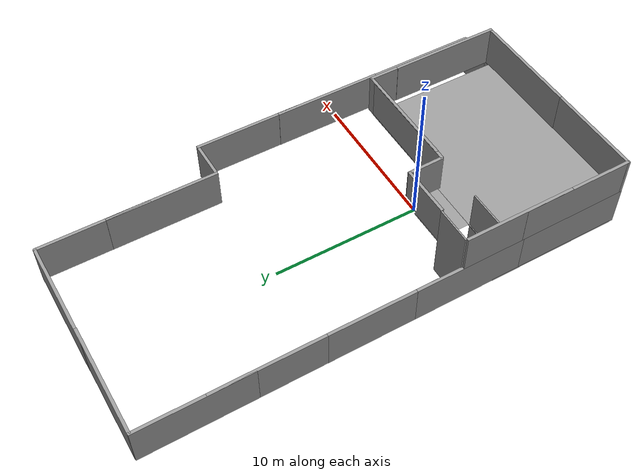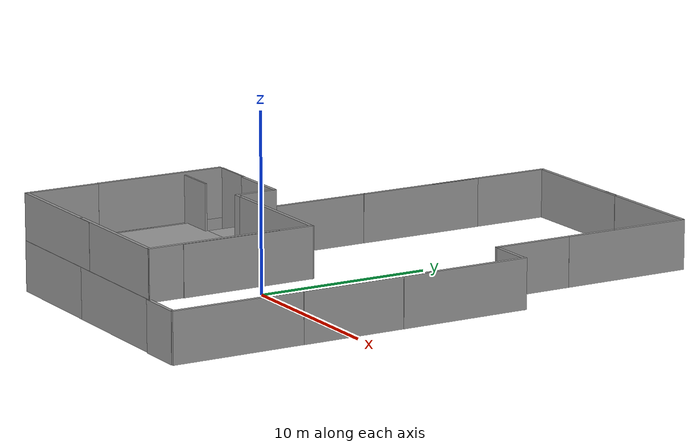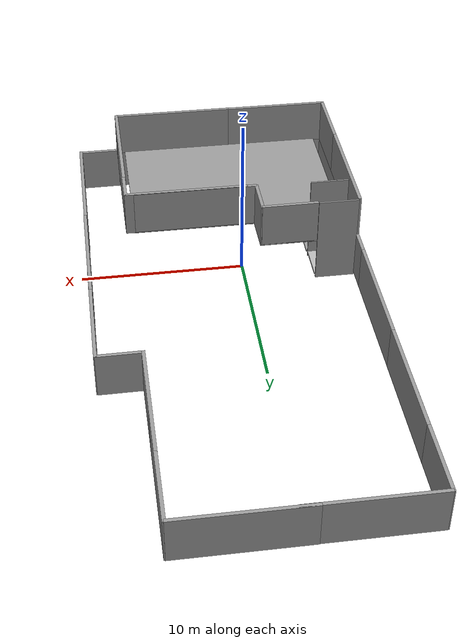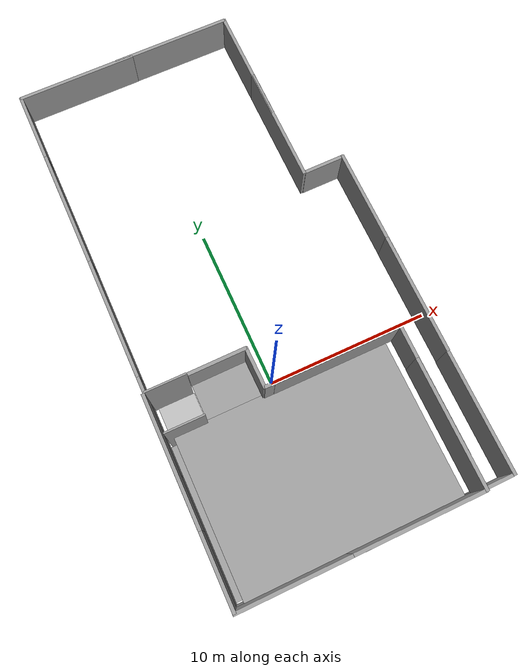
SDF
<sdf version="1.7">
 <world name="default">
  <gravity>0 0 -9.8</gravity>
  <physics name="default_physics" default="0" type="ode">
   <max_step_size>0.001</max_step_size>
   <real_time_factor>1</real_time_factor>
   <real_time_update_rate>1000</real_time_update_rate>
  </physics>
  <light name="Warehouse_CeilingLight_003" type="point">
   <pose>0 0 9 0 -0 0</pose>
   <diffuse>0.5 0.5 0.5 1</diffuse>
   <specular>0.2 0.2 0.2 1</specular>
   <attenuation>
    <range>80</range>
    <constant>0.3</constant>
    <linear>0.01</linear>
    <quadratic>0.001</quadratic>
   </attenuation>
   <direction>0.1 0.1 -1</direction>
   <spot><inner_angle>0</inner_angle><outer_angle>0</outer_angle><falloff>0</falloff></spot>
  </light>
  <magnetic_field>6e-06 2.3e-05 -4.2e-05</magnetic_field>
  <atmosphere type="adiabatic"/>
  <scene><ambient>0.4 0.4 0.4 1</ambient><background>0.7 0.7 0.7 1</background><shadows>1</shadows></scene>
  <audio><device>default</device></audio>
  <spherical_coordinates>
   <surface_model>EARTH_WGS84</surface_model>
   <latitude_deg>0</latitude_deg>
   <longitude_deg>0</longitude_deg>
   <elevation>0</elevation>
   <heading_deg>0</heading_deg>
  </spherical_coordinates>
  <model name="grey_wall">
   <static>1</static>
   <link name="link">
    <pose>0 0 1.4 0 -0 0</pose>
    <collision name="collision"><geometry><box><size>7.5 0.2 2.8</size></box></geometry></collision>
    <visual name="visual">
     <cast_shadows>0</cast_shadows>
     <geometry><box><size>7.5 0.2 2.8</size></box></geometry>
     <material>
      <script>
       <uri>model://grey_wall/materials/scripts</uri>
       <uri>model://grey_wall/materials/textures</uri>
       <name>vrc/grey_wall</name>
      </script>
     </material>
    </visual>
   </link>
   <pose>-3.27554 -10.3116 2.59985 0 -0 0</pose>
  </model>
  <model name="grey_wall_0">
   <static>1</static>
   <link name="link">
    <pose>0 0 1.4 0 -0 0</pose>
    <collision name="collision"><geometry><box><size>7.5 0.2 2.8</size></box></geometry></collision>
    <visual name="visual">
     <cast_shadows>0</cast_shadows>
     <geometry><box><size>7.5 0.2 2.8</size></box></geometry>
     <material>
      <script>
       <uri>model://grey_wall/materials/scripts</uri>
       <uri>model://grey_wall/materials/textures</uri>
       <name>vrc/grey_wall</name>
      </script>
     </material>
    </visual>
   </link>
   <pose>9.46506 -6.66729 0 0 0 -1.57228</pose>
  </model>
  <model name="grey_wall_0_clone">
   <static>1</static>
   <link name="link">
    <pose>0 0 1.4 0 -0 0</pose>
    <collision name="collision"><geometry><box><size>7.5 0.2 2.8</size></box></geometry></collision>
    <visual name="visual">
     <cast_shadows>0</cast_shadows>
     <geometry><box><size>7.5 0.2 2.8</size></box></geometry>
     <material>
      <script>
       <uri>model://grey_wall/materials/scripts</uri>
       <uri>model://grey_wall/materials/textures</uri>
       <name>vrc/grey_wall</name>
      </script>
     </material>
    </visual>
   </link>
   <pose>9.50251 0.819731 0 0 0 -1.57228</pose>
  </model>
  <model name="grey_wall_0_clone_0">
   <static>1</static>
   <link name="link">
    <pose>0 0 1.4 0 -0 0</pose>
    <collision name="collision"><geometry><box><size>7.5 0.2 2.8</size></box></geometry></collision>
    <visual name="visual">
     <cast_shadows>0</cast_shadows>
     <geometry><box><size>7.5 0.2 2.8</size></box></geometry>
     <material>
      <script>
       <uri>model://grey_wall/materials/scripts</uri>
       <uri>model://grey_wall/materials/textures</uri>
       <name>vrc/grey_wall</name>
      </script>
     </material>
    </visual>
   </link>
   <pose>9.52214 6.71138 0 0 0 -1.57228</pose>
  </model>
  <model name="grey_wall_clone">
   <static>1</static>
   <link name="link">
    <pose>0 0 1.4 0 -0 0</pose>
    <collision name="collision"><geometry><box><size>7.5 0.2 2.8</size></box></geometry></collision>
    <visual name="visual">
     <cast_shadows>0</cast_shadows>
     <geometry><box><size>7.5 0.2 2.8</size></box></geometry>
     <material>
      <script>
       <uri>model://grey_wall/materials/scripts</uri>
       <uri>model://grey_wall/materials/textures</uri>
       <name>vrc/grey_wall</name>
      </script>
     </material>
    </visual>
   </link>
   <pose>3.20261 22.2565 0 0 -0 0</pose>
  </model>
  <model name="grey_wall_clone_0">
   <static>1</static>
   <link name="link">
    <pose>0 0 1.4 0 -0 0</pose>
    <collision name="collision"><geometry><box><size>7.5 0.2 2.8</size></box></geometry></collision>
    <visual name="visual">
     <cast_shadows>0</cast_shadows>
     <geometry><box><size>7.5 0.2 2.8</size></box></geometry>
     <material>
      <script>
       <uri>model://grey_wall/materials/scripts</uri>
       <uri>model://grey_wall/materials/textures</uri>
       <name>vrc/grey_wall</name>
      </script>
     </material>
    </visual>
   </link>
   <pose>-3.18617 22.2381 0 0 -0 0</pose>
  </model>
  <model name="grey_wall_clone_1">
   <static>1</static>
   <link name="link">
    <pose>0 0 1.4 0 -0 0</pose>
    <collision name="collision"><geometry><box><size>7.5 0.2 2.8</size></box></geometry></collision>
    <visual name="visual">
     <cast_shadows>0</cast_shadows>
     <geometry><box><size>7.5 0.2 2.8</size></box></geometry>
     <material>
      <script>
       <uri>model://grey_wall/materials/scripts</uri>
       <uri>model://grey_wall/materials/textures</uri>
       <name>vrc/grey_wall</name>
      </script>
     </material>
    </visual>
   </link>
   <pose>3.23489 -10.3239 0 0 -0 0</pose>
  </model>
  <model name="grey_wall_clone_2">
   <static>1</static>
   <link name="link">
    <pose>0 0 1.4 0 -0 0</pose>
    <collision name="collision"><geometry><box><size>7.5 0.2 2.8</size></box></geometry></collision>
    <visual name="visual">
     <cast_shadows>0</cast_shadows>
     <geometry><box><size>7.5 0.2 2.8</size></box></geometry>
     <material>
      <script>
       <uri>model://grey_wall/materials/scripts</uri>
       <uri>model://grey_wall/materials/textures</uri>
       <name>vrc/grey_wall</name>
      </script>
     </material>
    </visual>
   </link>
   <pose>-3.27808 -10.3208 0 0 -0 0</pose>
  </model>
  <model name="grey_wall_0_clone_1">
   <static>1</static>
   <link name="link">
    <pose>0 0 1.4 0 -0 0</pose>
    <collision name="collision"><geometry><box><size>7.5 0.2 2.8</size></box></geometry></collision>
    <visual name="visual">
     <cast_shadows>0</cast_shadows>
     <geometry><box><size>7.5 0.2 2.8</size></box></geometry>
     <material>
      <script>
       <uri>model://grey_wall/materials/scripts</uri>
       <uri>model://grey_wall/materials/textures</uri>
       <name>vrc/grey_wall</name>
      </script>
     </material>
    </visual>
   </link>
   <pose>-6.93259 -6.6497 0 0 0 -1.57228</pose>
  </model>
  <model name="grey_wall_0_clone_2">
   <static>1</static>
   <link name="link">
    <pose>0 0 1.4 0 -0 0</pose>
    <collision name="collision"><geometry><box><size>7.5 0.2 2.8</size></box></geometry></collision>
    <visual name="visual">
     <cast_shadows>0</cast_shadows>
     <geometry><box><size>7.5 0.2 2.8</size></box></geometry>
     <material>
      <script>
       <uri>model://grey_wall/materials/scripts</uri>
       <uri>model://grey_wall/materials/textures</uri>
       <name>vrc/grey_wall</name>
      </script>
     </material>
    </visual>
   </link>
   <pose>-6.9218 0.784813 0 0 0 -1.57228</pose>
  </model>
  <model name="grey_wall_0_clone_3">
   <static>1</static>
   <link name="link">
    <pose>0 0 1.4 0 -0 0</pose>
    <collision name="collision"><geometry><box><size>7.5 0.2 2.8</size></box></geometry></collision>
    <visual name="visual">
     <cast_shadows>0</cast_shadows>
     <geometry><box><size>7.5 0.2 2.8</size></box></geometry>
     <material>
      <script>
       <uri>model://grey_wall/materials/scripts</uri>
       <uri>model://grey_wall/materials/textures</uri>
       <name>vrc/grey_wall</name>
      </script>
     </material>
    </visual>
   </link>
   <pose>-6.91099 6.67572 0 0 0 -1.57228</pose>
  </model>
  <model name="unit_box">
   <link name="link">
    <inertial>
     <mass>1</mass>
     <inertia>
      <ixx>0.166667</ixx>
      <ixy>0</ixy>
      <ixz>0</ixz>
      <iyy>0.166667</iyy>
      <iyz>0</iyz>
      <izz>0.166667</izz>
     </inertia>
    </inertial>
    <visual name="visual">
     <geometry><box><size>12.9086 9.40653 0.053592</size></box></geometry>
     <material>
      <script><name>Gazebo/Grey</name><uri>file://media/materials/scripts/gazebo.material</uri></script>
      <shader type="pixel"/>
     </material>
    </visual>
    <collision name="collision">
     <geometry><box><size>12.9086 9.40653 0.053592</size></box></geometry>
     <surface>
      <friction>
       <ode><mu>1</mu><mu2>1</mu2><fdir1>0 0 0</fdir1><slip1>0</slip1><slip2>0</slip2></ode>
       <torsional>
        <coefficient>1</coefficient>
        <patch_radius>0</patch_radius>
        <surface_radius>0</surface_radius>
        <use_patch_radius>1</use_patch_radius>
        <ode><slip>0</slip></ode>
       </torsional>
      </friction>
      <bounce><restitution_coefficient>0</restitution_coefficient><threshold>1e+06</threshold></bounce>
      <contact>
       <collide_without_contact>0</collide_without_contact>
       <collide_without_contact_bitmask>1</collide_without_contact_bitmask>
       <collide_bitmask>1</collide_bitmask>
       <ode>
        <soft_cfm>0</soft_cfm>
        <soft_erp>0.2</soft_erp>
        <kp>1e+13</kp>
        <kd>1</kd>
        <max_vel>0.01</max_vel>
        <min_depth>0</min_depth>
       </ode>
       <bullet>
        <split_impulse>1</split_impulse>
        <split_impulse_penetration_threshold>-0.01</split_impulse_penetration_threshold>
        <soft_cfm>0</soft_cfm>
        <soft_erp>0.2</soft_erp>
        <kp>1e+13</kp>
        <kd>1</kd>
       </bullet>
      </contact>
     </surface>
    </collision>
   </link>
   <static>1</static>
   <pose>0.06243 -5.55625 2.64947 0 -0 0</pose>
  </model>
  <model name="grey_wall_clone_3">
   <static>1</static>
   <link name="link">
    <pose>0 0 1.4 0 -0 0</pose>
    <collision name="collision"><geometry><box><size>7.5 0.2 2.8</size></box></geometry></collision>
    <visual name="visual">
     <cast_shadows>0</cast_shadows>
     <geometry><box><size>7.5 0.2 2.8</size></box></geometry>
     <material>
      <script>
       <uri>model://grey_wall/materials/scripts</uri>
       <uri>model://grey_wall/materials/textures</uri>
       <name>vrc/grey_wall</name>
      </script>
     </material>
    </visual>
   </link>
   <pose>3.21904 -10.3081 2.61463 0 -0 0</pose>
  </model>
  <model name="grey_wall_clone_4">
   <static>1</static>
   <link name="link">
    <pose>0 0 1.4 0 -0 0</pose>
    <collision name="collision"><geometry><box><size>7.5 0.2 2.8</size></box></geometry></collision>
    <visual name="visual">
     <cast_shadows>0</cast_shadows>
     <geometry><box><size>7.5 0.2 2.8</size></box></geometry>
     <material>
      <script>
       <uri>model://grey_wall/materials/scripts</uri>
       <uri>model://grey_wall/materials/textures</uri>
       <name>vrc/grey_wall</name>
      </script>
     </material>
    </visual>
   </link>
   <pose>6.94045 -6.63202 2.63013 0.001524 -0.000149 1.56979</pose>
  </model>
  <model name="grey_wall_clone_4_clone">
   <static>1</static>
   <link name="link">
    <pose>0 0 1.4 0 -0 0</pose>
    <collision name="collision"><geometry><box><size>7.5 0.2 2.8</size></box></geometry></collision>
    <visual name="visual">
     <cast_shadows>0</cast_shadows>
     <geometry><box><size>7.5 0.2 2.8</size></box></geometry>
     <material>
      <script>
       <uri>model://grey_wall/materials/scripts</uri>
       <uri>model://grey_wall/materials/textures</uri>
       <name>vrc/grey_wall</name>
      </script>
     </material>
    </visual>
   </link>
   <pose>6.95953 -4.68651 2.61952 0.001524 -0.000149 1.56979</pose>
  </model>
  <model name="grey_wall_clone_4_clone_0">
   <static>1</static>
   <link name="link">
    <pose>0 0 1.4 0 -0 0</pose>
    <collision name="collision"><geometry><box><size>7.5 0.2 2.8</size></box></geometry></collision>
    <visual name="visual">
     <cast_shadows>0</cast_shadows>
     <geometry><box><size>7.5 0.2 2.8</size></box></geometry>
     <material>
      <script>
       <uri>model://grey_wall/materials/scripts</uri>
       <uri>model://grey_wall/materials/textures</uri>
       <name>vrc/grey_wall</name>
      </script>
     </material>
    </visual>
   </link>
   <pose>-6.92089 -6.58857 2.60585 0.001524 -0.000149 1.56979</pose>
  </model>
  <model name="grey_wall_clone_4_clone_1">
   <static>1</static>
   <link name="link">
    <pose>0 0 1.4 0 -0 0</pose>
    <collision name="collision"><geometry><box><size>7.5 0.2 2.8</size></box></geometry></collision>
    <visual name="visual">
     <cast_shadows>0</cast_shadows>
     <geometry><box><size>7.5 0.2 2.8</size></box></geometry>
     <material>
      <script>
       <uri>model://grey_wall/materials/scripts</uri>
       <uri>model://grey_wall/materials/textures</uri>
       <name>vrc/grey_wall</name>
      </script>
     </material>
    </visual>
   </link>
   <pose>-6.91371 -2.39669 2.61409 0.001524 -0.000149 1.56979</pose>
  </model>
  <model name="elevator">
   <pose>-5.5 0.2 0.009516 0 -0 0</pose>
   <link name="car_link">
    <inertial>
     <mass>800</mass>
     <inertia><ixx>1</ixx><ixy>0</ixy><ixz>0</ixz><iyy>1</iyy><iyz>0</iyz><izz>1</izz></inertia>
    </inertial>
    <collision name="floor_collision">
     <geometry><box><size>2.25 2.25 0.15</size></box></geometry>
     <surface><contact><collide_bitmask>2</collide_bitmask></contact></surface>
    </collision>
    <visual name="floor_visual"><geometry><box><size>2.25 2.25 0.15</size></box></geometry></visual>
   </link>
   <joint name="lift" type="prismatic">
    <parent>world</parent>
    <child>car_link</child>
    <axis>
     <xyz>0 0 1</xyz>
     <limit><lower>0</lower><upper>10</upper><effort>100000</effort></limit>
     <dynamics>
      <damping>50</damping>
      <spring_reference>0</spring_reference>
      <spring_stiffness>0</spring_stiffness>
     </dynamics>
    </axis>
    <physics>
     <ode><implicit_spring_damper>1</implicit_spring_damper><limit><cfm>0</cfm><erp>0.2</erp></limit></ode>
    </physics>
   </joint>
   <plugin name="elevator_plugin" filename="libElevatorPlugin.so">
    <lift_joint>elevator::lift</lift_joint>
    <floor_height>2.675</floor_height>
    <topic>~/elevator</topic>
   </plugin>
  </model>
  <light name="Warehouse_CeilingLight_003_clone" type="point">
   <pose>-0.883526 26.9964 9 0 -0 0</pose>
   <diffuse>0.5 0.5 0.5 1</diffuse>
   <specular>0.2 0.2 0.2 1</specular>
   <direction>0.099015 0.099015 -0.990148</direction>
   <attenuation>
    <range>80</range>
    <constant>0.3</constant>
    <linear>0.01</linear>
    <quadratic>0.001</quadratic>
   </attenuation>
   <spot><inner_angle>0</inner_angle><outer_angle>0</outer_angle><falloff>0</falloff></spot>
  </light>
  <model name="grey_wall_clone_clone">
   <static>1</static>
   <link name="link">
    <pose>0 0 1.4 0 -0 0</pose>
    <collision name="collision"><geometry><box><size>7.5 0.2 2.8</size></box></geometry></collision>
    <visual name="visual">
     <cast_shadows>0</cast_shadows>
     <geometry><box><size>7.5 0.2 2.8</size></box></geometry>
     <material>
      <script>
       <uri>model://grey_wall/materials/scripts</uri>
       <uri>model://grey_wall/materials/textures</uri>
       <name>vrc/grey_wall</name>
      </script>
     </material>
    </visual>
   </link>
   <pose>6.92087 14.0395 0 0 -0 1.5708</pose>
  </model>
  <model name="grey_wall_clone_clone_clone">
   <static>1</static>
   <link name="link">
    <pose>0 0 1.4 0 -0 0</pose>
    <collision name="collision"><geometry><box><size>7.5 0.2 2.8</size></box></geometry></collision>
    <visual name="visual">
     <cast_shadows>0</cast_shadows>
     <geometry><box><size>7.5 0.2 2.8</size></box></geometry>
     <material>
      <script>
       <uri>model://grey_wall/materials/scripts</uri>
       <uri>model://grey_wall/materials/textures</uri>
       <name>vrc/grey_wall</name>
      </script>
     </material>
    </visual>
   </link>
   <pose>6.92651 18.5783 0 0 -0 1.5708</pose>
  </model>
  <model name="grey_wall_clone_clone_clone_0">
   <static>1</static>
   <link name="link">
    <pose>0 0 1.4 0 -0 0</pose>
    <collision name="collision"><geometry><box><size>7.5 0.2 2.8</size></box></geometry></collision>
    <visual name="visual">
     <cast_shadows>0</cast_shadows>
     <geometry><box><size>7.5 0.2 2.8</size></box></geometry>
     <material>
      <script>
       <uri>model://grey_wall/materials/scripts</uri>
       <uri>model://grey_wall/materials/textures</uri>
       <name>vrc/grey_wall</name>
      </script>
     </material>
    </visual>
   </link>
   <pose>-6.90164 14.0783 0 0 -0 1.5708</pose>
  </model>
  <model name="grey_wall_clone_clone_clone_1">
   <static>1</static>
   <link name="link">
    <pose>0 0 1.4 0 -0 0</pose>
    <collision name="collision"><geometry><box><size>7.5 0.2 2.8</size></box></geometry></collision>
    <visual name="visual">
     <cast_shadows>0</cast_shadows>
     <geometry><box><size>7.5 0.2 2.8</size></box></geometry>
     <material>
      <script>
       <uri>model://grey_wall/materials/scripts</uri>
       <uri>model://grey_wall/materials/textures</uri>
       <name>vrc/grey_wall</name>
      </script>
     </material>
    </visual>
   </link>
   <pose>-6.90394 18.5733 0 0 -0 1.5708</pose>
  </model>
  <model name="grey_wall_clone_3_clone">
   <static>1</static>
   <link name="link">
    <pose>0 0 1.4 0 -0 0</pose>
    <collision name="collision"><geometry><box><size>7.5 0.2 2.8</size></box></geometry></collision>
    <visual name="visual">
     <cast_shadows>0</cast_shadows>
     <geometry><box><size>7.5 0.2 2.8</size></box></geometry>
     <material>
      <script>
       <uri>model://grey_wall/materials/scripts</uri>
       <uri>model://grey_wall/materials/textures</uri>
       <name>vrc/grey_wall</name>
      </script>
     </material>
    </visual>
   </link>
   <pose>3.30421 -0.972444 2.61213 0 -0 0</pose>
  </model>
  <model name="grey_wall_clone_3_clone_clone">
   <static>1</static>
   <link name="link">
    <pose>0 0 1.4 0 -0 0</pose>
    <collision name="collision"><geometry><box><size>7.5 0.2 2.8</size></box></geometry></collision>
    <visual name="visual">
     <cast_shadows>0</cast_shadows>
     <geometry><box><size>7.5 0.2 2.8</size></box></geometry>
     <material>
      <script>
       <uri>model://grey_wall/materials/scripts</uri>
       <uri>model://grey_wall/materials/textures</uri>
       <name>vrc/grey_wall</name>
      </script>
     </material>
    </visual>
   </link>
   <pose>2.74572 -0.963444 2.59481 0 -0 0</pose>
  </model>
  <model name="unit_box_0">
   <link name="link">
    <inertial>
     <mass>10.6722</mass>
     <inertia><ixx>27.6168</ixx><ixy>0</ixy><ixz>0</ixz><iyy>32.8843</iyy><iyz>0</iyz><izz>5.28662</izz></inertia>
    </inertial>
    <visual name="visual">
     <geometry><box><size>2.4359 0.103696 5.57153</size></box></geometry>
     <material>
      <script><name>Gazebo/Grey</name><uri>file://media/materials/scripts/gazebo.material</uri></script>
      <shader type="pixel"/>
     </material>
    </visual>
    <collision name="collision">
     <geometry><box><size>2.4359 0.103696 5.57153</size></box></geometry>
     <surface>
      <friction>
       <ode><mu>1</mu><mu2>1</mu2><fdir1>0 0 0</fdir1><slip1>0</slip1><slip2>0</slip2></ode>
       <torsional>
        <coefficient>1</coefficient>
        <patch_radius>0</patch_radius>
        <surface_radius>0</surface_radius>
        <use_patch_radius>1</use_patch_radius>
        <ode><slip>0</slip></ode>
       </torsional>
      </friction>
      <bounce><restitution_coefficient>0</restitution_coefficient><threshold>1e+06</threshold></bounce>
      <contact>
       <collide_without_contact>0</collide_without_contact>
       <collide_without_contact_bitmask>1</collide_without_contact_bitmask>
       <collide_bitmask>1</collide_bitmask>
       <ode>
        <soft_cfm>0</soft_cfm>
        <soft_erp>0.2</soft_erp>
        <kp>1e+13</kp>
        <kd>1</kd>
        <max_vel>0.01</max_vel>
        <min_depth>0</min_depth>
       </ode>
       <bullet>
        <split_impulse>1</split_impulse>
        <split_impulse_penetration_threshold>-0.01</split_impulse_penetration_threshold>
        <soft_cfm>0</soft_cfm>
        <soft_erp>0.2</soft_erp>
        <kp>1e+13</kp>
        <kd>1</kd>
       </bullet>
      </contact>
     </surface>
    </collision>
   </link>
   <static>1</static>
   <pose>-5.63138 1.4039 2.5984 -1e-06 0 0</pose>
  </model>
  <model name="unit_box_0_clone_0">
   <link name="link">
    <inertial>
     <mass>10.2864</mass>
     <inertia><ixx>26.6183</ixx><ixy>0</ixy><ixz>0</ixz><iyy>31.3343</iyy><iyz>0</iyz><izz>4.73437</izz></inertia>
    </inertial>
    <visual name="visual">
     <geometry><box><size>2.34783 0.103696 5.57153</size></box></geometry>
     <material>
      <script><name>Gazebo/Grey</name><uri>file://media/materials/scripts/gazebo.material</uri></script>
      <shader type="pixel"/>
     </material>
    </visual>
    <collision name="collision">
     <geometry><box><size>2.34783 0.103696 5.57153</size></box></geometry>
     <surface>
      <friction>
       <ode><mu>1</mu><mu2>1</mu2><fdir1>0 0 0</fdir1><slip1>0</slip1><slip2>0</slip2></ode>
       <torsional>
        <coefficient>1</coefficient>
        <patch_radius>0</patch_radius>
        <surface_radius>0</surface_radius>
        <use_patch_radius>1</use_patch_radius>
        <ode><slip>0</slip></ode>
       </torsional>
      </friction>
      <bounce><restitution_coefficient>0</restitution_coefficient><threshold>1e+06</threshold></bounce>
      <contact>
       <collide_without_contact>0</collide_without_contact>
       <collide_without_contact_bitmask>1</collide_without_contact_bitmask>
       <collide_bitmask>1</collide_bitmask>
       <ode>
        <soft_cfm>0</soft_cfm>
        <soft_erp>0.2</soft_erp>
        <kp>1e+13</kp>
        <kd>1</kd>
        <max_vel>0.01</max_vel>
        <min_depth>0</min_depth>
       </ode>
       <bullet>
        <split_impulse>1</split_impulse>
        <split_impulse_penetration_threshold>-0.01</split_impulse_penetration_threshold>
        <soft_cfm>0</soft_cfm>
        <soft_erp>0.2</soft_erp>
        <kp>1e+13</kp>
        <kd>1</kd>
       </bullet>
      </contact>
     </surface>
    </collision>
   </link>
   <static>1</static>
   <pose>-5.54801 -0.960936 2.50781 -1e-06 0 0</pose>
  </model>
  <model name="grey_wall_clone_4_clone_0_clone">
   <link name="link">
    <pose>2.48765 -0.1067 1.34342 0 -0 0</pose>
    <inertial>
     <inertia><ixx>0</ixx><ixy>0</ixy><ixz>0</ixz><iyy>0</iyy><iyz>0</iyz><izz>0</izz></inertia>
     <mass>0</mass>
    </inertial>
    <visual name="visual">
     <cast_shadows>0</cast_shadows>
     <geometry><box><size>2.4428 0.2 2.8</size></box></geometry>
     <material>
      <script>
       <uri>model://grey_wall/materials/scripts</uri>
       <uri>model://grey_wall/materials/textures</uri>
       <name>vrc/grey_wall</name>
      </script>
      <shader type="pixel"/>
     </material>
    </visual>
    <collision name="collision">
     <geometry><box><size>2.4428 0.2 2.8</size></box></geometry>
     <surface>
      <friction>
       <ode><mu>1</mu><mu2>1</mu2><fdir1>0 0 0</fdir1><slip1>0</slip1><slip2>0</slip2></ode>
       <torsional>
        <coefficient>1</coefficient>
        <patch_radius>0</patch_radius>
        <surface_radius>0</surface_radius>
        <use_patch_radius>1</use_patch_radius>
        <ode><slip>0</slip></ode>
       </torsional>
      </friction>
      <bounce><restitution_coefficient>0</restitution_coefficient><threshold>1e+06</threshold></bounce>
      <contact>
       <collide_without_contact>0</collide_without_contact>
       <collide_without_contact_bitmask>1</collide_without_contact_bitmask>
       <collide_bitmask>1</collide_bitmask>
       <ode>
        <soft_cfm>0</soft_cfm>
        <soft_erp>0.2</soft_erp>
        <kp>1e+13</kp>
        <kd>1</kd>
        <max_vel>0.01</max_vel>
        <min_depth>0</min_depth>
       </ode>
       <bullet>
        <split_impulse>1</split_impulse>
        <split_impulse_penetration_threshold>-0.01</split_impulse_penetration_threshold>
        <soft_cfm>0</soft_cfm>
        <soft_erp>0.2</soft_erp>
        <kp>1e+13</kp>
        <kd>1</kd>
       </bullet>
      </contact>
     </surface>
    </collision>
   </link>
   <static>1</static>
   <pose>-0.916599 2.69564 2.63397 0.004379 9.2e-05 -1.55886</pose>
  </model>
  <model name="unit_box_0_clone_0_clone">
   <link name="link">
    <inertial>
     <mass>10.2864</mass>
     <inertia><ixx>26.6183</ixx><ixy>0</ixy><ixz>0</ixz><iyy>31.3343</iyy><iyz>0</iyz><izz>4.73437</izz></inertia>
    </inertial>
    <visual name="visual">
     <geometry><box><size>2.72418 0.103696 9.13352</size></box></geometry>
     <material>
      <script><name>Gazebo/Grey</name><uri>file://media/materials/scripts/gazebo.material</uri></script>
      <shader type="pixel"/>
     </material>
    </visual>
    <collision name="collision">
     <geometry><box><size>2.72418 0.103696 9.13352</size></box></geometry>
     <surface>
      <friction>
       <ode><mu>1</mu><mu2>1</mu2><fdir1>0 0 0</fdir1><slip1>0</slip1><slip2>0</slip2></ode>
       <torsional>
        <coefficient>1</coefficient>
        <patch_radius>0</patch_radius>
        <surface_radius>0</surface_radius>
        <use_patch_radius>1</use_patch_radius>
        <ode><slip>0</slip></ode>
       </torsional>
      </friction>
      <bounce><restitution_coefficient>0</restitution_coefficient><threshold>1e+06</threshold></bounce>
      <contact>
       <collide_without_contact>0</collide_without_contact>
       <collide_without_contact_bitmask>1</collide_without_contact_bitmask>
       <collide_bitmask>1</collide_bitmask>
       <ode>
        <soft_cfm>0</soft_cfm>
        <soft_erp>0.2</soft_erp>
        <kp>1e+13</kp>
        <kd>1</kd>
        <max_vel>0.01</max_vel>
        <min_depth>0</min_depth>
       </ode>
       <bullet>
        <split_impulse>1</split_impulse>
        <split_impulse_penetration_threshold>-0.01</split_impulse_penetration_threshold>
        <soft_cfm>0</soft_cfm>
        <soft_erp>0.2</soft_erp>
        <kp>1e+13</kp>
        <kd>1</kd>
       </bullet>
      </contact>
     </surface>
    </collision>
   </link>
   <static>1</static>
   <pose>-5.67483 -5.59062 0.036889 1.57 -1e-06 3.14</pose>
  </model>
  <model name="grey_wall_clone_4_clone_0_clone_clone_0_clone">
   <link name="link">
    <pose>2.30599 -0.1067 1.34342 0 -0 0</pose>
    <inertial>
     <inertia><ixx>0</ixx><ixy>0</ixy><ixz>0</ixz><iyy>0</iyy><iyz>0</iyz><izz>0</izz></inertia>
     <mass>0</mass>
    </inertial>
    <visual name="visual">
     <cast_shadows>0</cast_shadows>
     <geometry><box><size>2.59266 0.2 2.8</size></box></geometry>
     <material>
      <script>
       <uri>model://grey_wall/materials/scripts</uri>
       <uri>model://grey_wall/materials/textures</uri>
       <name>vrc/grey_wall</name>
      </script>
      <shader type="pixel"/>
     </material>
    </visual>
    <collision name="collision">
     <geometry><box><size>2.59266 0.2 2.8</size></box></geometry>
     <surface>
      <friction>
       <ode><mu>1</mu><mu2>1</mu2><fdir1>0 0 0</fdir1><slip1>0</slip1><slip2>0</slip2></ode>
       <torsional>
        <coefficient>1</coefficient>
        <patch_radius>0</patch_radius>
        <surface_radius>0</surface_radius>
        <use_patch_radius>1</use_patch_radius>
        <ode><slip>0</slip></ode>
       </torsional>
      </friction>
      <bounce><restitution_coefficient>0</restitution_coefficient><threshold>1e+06</threshold></bounce>
      <contact>
       <collide_without_contact>0</collide_without_contact>
       <collide_without_contact_bitmask>1</collide_without_contact_bitmask>
       <collide_bitmask>1</collide_bitmask>
       <ode>
        <soft_cfm>0</soft_cfm>
        <soft_erp>0.2</soft_erp>
        <kp>1e+13</kp>
        <kd>1</kd>
        <max_vel>0.01</max_vel>
        <min_depth>0</min_depth>
       </ode>
       <bullet>
        <split_impulse>1</split_impulse>
        <split_impulse_penetration_threshold>-0.01</split_impulse_penetration_threshold>
        <soft_cfm>0</soft_cfm>
        <soft_erp>0.2</soft_erp>
        <kp>1e+13</kp>
        <kd>1</kd>
       </bullet>
      </contact>
     </surface>
    </collision>
   </link>
   <static>1</static>
   <pose>10.5809 10.2799 0.034182 -0.00016 -0.001523 -3.13547</pose>
  </model>
  <model name="grey_wall_clone_4_clone_0_clone_clone_0_clone_clone">
   <link name="link">
    <pose>2.30599 -0.1067 1.34342 0 -0 0</pose>
    <inertial>
     <inertia><ixx>0</ixx><ixy>0</ixy><ixz>0</ixz><iyy>0</iyy><iyz>0</iyz><izz>0</izz></inertia>
     <mass>0</mass>
    </inertial>
    <visual name="visual">
     <cast_shadows>0</cast_shadows>
     <geometry><box><size>2.59266 0.2 2.8</size></box></geometry>
     <material>
      <script>
       <uri>model://grey_wall/materials/scripts</uri>
       <uri>model://grey_wall/materials/textures</uri>
       <name>vrc/grey_wall</name>
      </script>
      <shader type="pixel"/>
     </material>
    </visual>
    <collision name="collision">
     <geometry><box><size>2.59266 0.2 2.8</size></box></geometry>
     <surface>
      <friction>
       <ode><mu>1</mu><mu2>1</mu2><fdir1>0 0 0</fdir1><slip1>0</slip1><slip2>0</slip2></ode>
       <torsional>
        <coefficient>1</coefficient>
        <patch_radius>0</patch_radius>
        <surface_radius>0</surface_radius>
        <use_patch_radius>1</use_patch_radius>
        <ode><slip>0</slip></ode>
       </torsional>
      </friction>
      <bounce><restitution_coefficient>0</restitution_coefficient><threshold>1e+06</threshold></bounce>
      <contact>
       <collide_without_contact>0</collide_without_contact>
       <collide_without_contact_bitmask>1</collide_without_contact_bitmask>
       <collide_bitmask>1</collide_bitmask>
       <ode>
        <soft_cfm>0</soft_cfm>
        <soft_erp>0.2</soft_erp>
        <kp>1e+13</kp>
        <kd>1</kd>
        <max_vel>0.01</max_vel>
        <min_depth>0</min_depth>
       </ode>
       <bullet>
        <split_impulse>1</split_impulse>
        <split_impulse_penetration_threshold>-0.01</split_impulse_penetration_threshold>
        <soft_cfm>0</soft_cfm>
        <soft_erp>0.2</soft_erp>
        <kp>1e+13</kp>
        <kd>1</kd>
       </bullet>
      </contact>
     </surface>
    </collision>
   </link>
   <static>1</static>
   <pose>10.419 -10.4366 0.034182 -0.00016 -0.001523 -3.13547</pose>
  </model>
  <model name="unit_box_clone">
   <link name="link">
    <inertial>
     <mass>0.0733351</mass>
     <inertia>
      <ixx>0.0495519</ixx>
      <ixy>0</ixy>
      <ixz>0</ixz>
      <iyy>0.0598025</iyy>
      <iyz>0</iyz>
      <izz>0.109319</izz>
     </inertia>
    </inertial>
    <pose>-4.77956 3.27085 0 0 -0 0</pose>
    <visual name="visual">
     <geometry><box><size>3.12774 2.847 0.053592</size></box></geometry>
     <material>
      <script><name>Gazebo/Grey</name><uri>file://media/materials/scripts/gazebo.material</uri></script>
      <shader type="pixel"/>
     </material>
    </visual>
    <collision name="collision">
     <geometry><box><size>3.12774 2.847 0.053592</size></box></geometry>
     <surface>
      <friction>
       <ode><mu>1</mu><mu2>1</mu2><fdir1>0 0 0</fdir1><slip1>0</slip1><slip2>0</slip2></ode>
       <torsional>
        <coefficient>1</coefficient>
        <patch_radius>0</patch_radius>
        <surface_radius>0</surface_radius>
        <use_patch_radius>1</use_patch_radius>
        <ode><slip>0</slip></ode>
       </torsional>
      </friction>
      <bounce><restitution_coefficient>0</restitution_coefficient><threshold>1e+06</threshold></bounce>
      <contact>
       <collide_without_contact>0</collide_without_contact>
       <collide_without_contact_bitmask>1</collide_without_contact_bitmask>
       <collide_bitmask>1</collide_bitmask>
       <ode>
        <soft_cfm>0</soft_cfm>
        <soft_erp>0.2</soft_erp>
        <kp>1e+13</kp>
        <kd>1</kd>
        <max_vel>0.01</max_vel>
        <min_depth>0</min_depth>
       </ode>
       <bullet>
        <split_impulse>1</split_impulse>
        <split_impulse_penetration_threshold>-0.01</split_impulse_penetration_threshold>
        <soft_cfm>0</soft_cfm>
        <soft_erp>0.2</soft_erp>
        <kp>1e+13</kp>
        <kd>1</kd>
       </bullet>
      </contact>
     </surface>
    </collision>
   </link>
   <static>1</static>
   <pose>2.17956 -3.25513 2.63998 0 -0 0</pose>
  </model>
  <model name="grey_wall_clone_4_clone_0_clone_clone_0">
   <link name="link">
    <pose>3.01198 -0.1067 1.34342 0 -0 0</pose>
    <inertial>
     <inertia><ixx>0</ixx><ixy>0</ixy><ixz>0</ixz><iyy>0</iyy><iyz>0</iyz><izz>0</izz></inertia>
     <mass>0</mass>
    </inertial>
    <visual name="visual">
     <cast_shadows>0</cast_shadows>
     <geometry><box><size>3.41099 0.2 2.8</size></box></geometry>
     <material>
      <script>
       <uri>model://grey_wall/materials/scripts</uri>
       <uri>model://grey_wall/materials/textures</uri>
       <name>vrc/grey_wall</name>
      </script>
      <shader type="pixel"/>
     </material>
    </visual>
    <collision name="collision">
     <geometry><box><size>3.41099 0.2 2.8</size></box></geometry>
     <surface>
      <friction>
       <ode><mu>1</mu><mu2>1</mu2><fdir1>0 0 0</fdir1><slip1>0</slip1><slip2>0</slip2></ode>
       <torsional>
        <coefficient>1</coefficient>
        <patch_radius>0</patch_radius>
        <surface_radius>0</surface_radius>
        <use_patch_radius>1</use_patch_radius>
        <ode><slip>0</slip></ode>
       </torsional>
      </friction>
      <bounce><restitution_coefficient>0</restitution_coefficient><threshold>1e+06</threshold></bounce>
      <contact>
       <collide_without_contact>0</collide_without_contact>
       <collide_without_contact_bitmask>1</collide_without_contact_bitmask>
       <collide_bitmask>1</collide_bitmask>
       <ode>
        <soft_cfm>0</soft_cfm>
        <soft_erp>0.2</soft_erp>
        <kp>1e+13</kp>
        <kd>1</kd>
        <max_vel>0.01</max_vel>
        <min_depth>0</min_depth>
       </ode>
       <bullet>
        <split_impulse>1</split_impulse>
        <split_impulse_penetration_threshold>-0.01</split_impulse_penetration_threshold>
        <soft_cfm>0</soft_cfm>
        <soft_erp>0.2</soft_erp>
        <kp>1e+13</kp>
        <kd>1</kd>
       </bullet>
      </contact>
     </surface>
    </collision>
   </link>
   <static>1</static>
   <pose>0.319176 1.24963 2.63939 -0.00016 -0.001523 -3.13547</pose>
  </model>
  <model name="unit_box_0_clone">
   <link name="link">
    <inertial>
     <mass>0.282424</mass>
     <inertia>
      <ixx>0.125569</ixx>
      <ixy>0</ixy>
      <ixz>0</ixz>
      <iyy>0.411318</iyy>
      <iyz>0</iyz>
      <izz>0.28575</izz>
     </inertia>
    </inertial>
    <pose>0.645264 -0.101375 1.03895 0 -0 0</pose>
    <visual name="visual">
     <geometry><box><size>3.48444 0.004641 2.30983</size></box></geometry>
     <material>
      <script><name>Gazebo/Grey</name><uri>file://media/materials/scripts/gazebo.material</uri></script>
      <shader type="pixel"/>
     </material>
    </visual>
    <collision name="collision">
     <geometry><box><size>3.48444 0.004641 2.30983</size></box></geometry>
     <surface>
      <friction>
       <ode><mu>1</mu><mu2>1</mu2><fdir1>0 0 0</fdir1><slip1>0</slip1><slip2>0</slip2></ode>
       <torsional>
        <coefficient>1</coefficient>
        <patch_radius>0</patch_radius>
        <surface_radius>0</surface_radius>
        <use_patch_radius>1</use_patch_radius>
        <ode><slip>0</slip></ode>
       </torsional>
      </friction>
      <bounce><restitution_coefficient>0</restitution_coefficient><threshold>1e+06</threshold></bounce>
      <contact>
       <collide_without_contact>0</collide_without_contact>
       <collide_without_contact_bitmask>1</collide_without_contact_bitmask>
       <collide_bitmask>1</collide_bitmask>
       <ode>
        <soft_cfm>0</soft_cfm>
        <soft_erp>0.2</soft_erp>
        <kp>1e+13</kp>
        <kd>1</kd>
        <max_vel>0.01</max_vel>
        <min_depth>0</min_depth>
       </ode>
       <bullet>
        <split_impulse>1</split_impulse>
        <split_impulse_penetration_threshold>-0.01</split_impulse_penetration_threshold>
        <soft_cfm>0</soft_cfm>
        <soft_erp>0.2</soft_erp>
        <kp>1e+13</kp>
        <kd>1</kd>
       </bullet>
      </contact>
     </surface>
    </collision>
   </link>
   <static>1</static>
   <pose>-3.27773 -0.737389 2.57158 -1.5704 0 0</pose>
  </model>
 </world>
</sdf>
